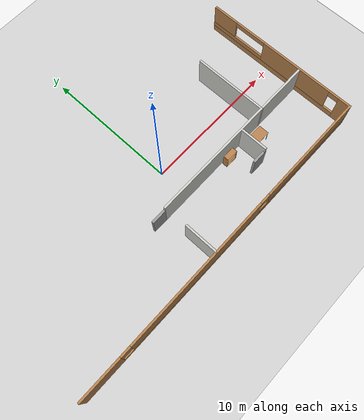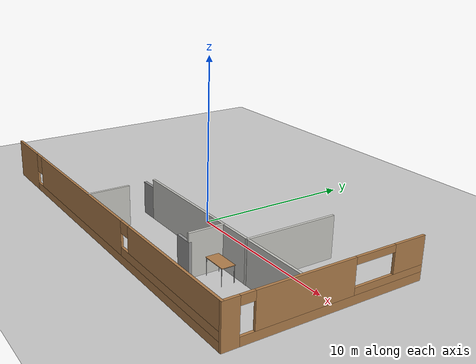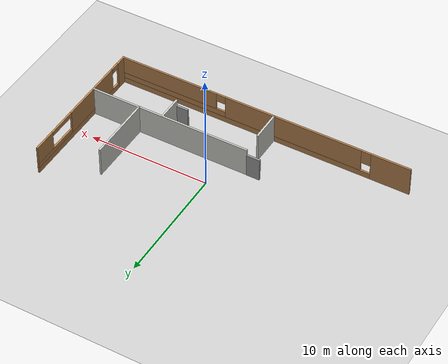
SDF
<sdf version="1.6">
 <world name="default">
  <model name="ground_plane">
   <static>1</static>
   <link name="link">
    <collision name="collision">
     <geometry><plane><normal>0 0 1</normal><size>100 100</size></plane></geometry>
     <surface>
      <contact><collide_bitmask>65535</collide_bitmask></contact>
      <friction><ode><mu>100</mu><mu2>50</mu2></ode></friction>
     </surface>
    </collision>
    <visual name="visual">
     <cast_shadows>0</cast_shadows>
     <geometry><plane><normal>0 0 1</normal><size>100 100</size></plane></geometry>
     <material>
      <script><uri>file://media/materials/scripts/gazebo.material</uri><name>Gazebo/Grey</name></script>
     </material>
    </visual>
   </link>
  </model>
  <model name="table_1">
   <static>1</static>
   <link name="link">
    <collision name="surface">
     <pose>0 0 1 0 -0 0</pose>
     <geometry><box><size>1.5 0.8 0.03</size></box></geometry>
     <surface><friction><ode><mu>0.6</mu><mu2>0.6</mu2></ode></friction></surface>
    </collision>
    <visual name="visual1">
     <pose>0 0 1 0 -0 0</pose>
     <geometry><box><size>1.5 0.8 0.03</size></box></geometry>
     <material>
      <script><uri>file://media/materials/scripts/gazebo.material</uri><name>Gazebo/Wood</name></script>
     </material>
    </visual>
    <collision name="front_left_leg">
     <pose>0.68 0.38 0.5 0 -0 0</pose>
     <geometry><cylinder><radius>0.02</radius><length>1</length></cylinder></geometry>
    </collision>
    <visual name="front_left_leg">
     <pose>0.68 0.38 0.5 0 -0 0</pose>
     <geometry><cylinder><radius>0.02</radius><length>1</length></cylinder></geometry>
     <material>
      <script><uri>file://media/materials/scripts/gazebo.material</uri><name>Gazebo/Grey</name></script>
     </material>
    </visual>
    <collision name="front_right_leg">
     <pose>0.68 -0.38 0.5 0 -0 0</pose>
     <geometry><cylinder><radius>0.02</radius><length>1</length></cylinder></geometry>
    </collision>
    <visual name="front_right_leg">
     <pose>0.68 -0.38 0.5 0 -0 0</pose>
     <geometry><cylinder><radius>0.02</radius><length>1</length></cylinder></geometry>
     <material>
      <script><uri>file://media/materials/scripts/gazebo.material</uri><name>Gazebo/Grey</name></script>
     </material>
    </visual>
    <collision name="back_right_leg">
     <pose>-0.68 -0.38 0.5 0 -0 0</pose>
     <geometry><cylinder><radius>0.02</radius><length>1</length></cylinder></geometry>
    </collision>
    <visual name="back_right_leg">
     <pose>-0.68 -0.38 0.5 0 -0 0</pose>
     <geometry><cylinder><radius>0.02</radius><length>1</length></cylinder></geometry>
     <material>
      <script><uri>file://media/materials/scripts/gazebo.material</uri><name>Gazebo/Grey</name></script>
     </material>
    </visual>
    <collision name="back_left_leg">
     <pose>-0.68 0.38 0.5 0 -0 0</pose>
     <geometry><cylinder><radius>0.02</radius><length>1</length></cylinder></geometry>
    </collision>
    <visual name="back_left_leg">
     <pose>-0.68 0.38 0.5 0 -0 0</pose>
     <geometry><cylinder><radius>0.02</radius><length>1</length></cylinder></geometry>
     <material>
      <script><uri>file://media/materials/scripts/gazebo.material</uri><name>Gazebo/Grey</name></script>
     </material>
    </visual>
   </link>
   <pose>6.12704 -3.2004 0 0 -0 0</pose>
  </model>
  <model name="bookshelf_0">
   <static>1</static>
   <link name="link">
    <inertial><mass>1</mass></inertial>
    <collision name="back">
     <pose>0 0.005 0.6 0 -0 0</pose>
     <geometry><box><size>0.9 0.01 1.2</size></box></geometry>
    </collision>
    <visual name="visual1">
     <pose>0 0.005 0.6 0 -0 0</pose>
     <geometry><box><size>0.9 0.01 1.2</size></box></geometry>
     <material>
      <script><uri>file://media/materials/scripts/gazebo.material</uri><name>Gazebo/Wood</name></script>
     </material>
    </visual>
    <collision name="left_side">
     <pose>0.45 -0.195 0.6 0 -0 0</pose>
     <geometry><box><size>0.02 0.4 1.2</size></box></geometry>
    </collision>
    <visual name="visual2">
     <pose>0.45 -0.195 0.6 0 -0 0</pose>
     <geometry><box><size>0.02 0.4 1.2</size></box></geometry>
     <material>
      <script><uri>file://media/materials/scripts/gazebo.material</uri><name>Gazebo/Wood</name></script>
     </material>
    </visual>
    <collision name="right_side">
     <pose>-0.45 -0.195 0.6 0 -0 0</pose>
     <geometry><box><size>0.02 0.4 1.2</size></box></geometry>
    </collision>
    <visual name="visual3">
     <pose>-0.45 -0.195 0.6 0 -0 0</pose>
     <geometry><box><size>0.02 0.4 1.2</size></box></geometry>
     <material>
      <script><uri>file://media/materials/scripts/gazebo.material</uri><name>Gazebo/Wood</name></script>
     </material>
    </visual>
    <collision name="bottom">
     <pose>0 -0.195 0.03 0 -0 0</pose>
     <geometry><box><size>0.88 0.4 0.06</size></box></geometry>
    </collision>
    <visual name="visual4">
     <pose>0 -0.195 0.03 0 -0 0</pose>
     <geometry><box><size>0.88 0.4 0.06</size></box></geometry>
     <material>
      <script><uri>file://media/materials/scripts/gazebo.material</uri><name>Gazebo/Wood</name></script>
     </material>
    </visual>
    <collision name="top">
     <pose>0 -0.195 1.19 0 -0 0</pose>
     <geometry><box><size>0.88 0.4 0.02</size></box></geometry>
    </collision>
    <visual name="visual5">
     <pose>0 -0.195 1.19 0 -0 0</pose>
     <geometry><box><size>0.88 0.4 0.02</size></box></geometry>
     <material>
      <script><uri>file://media/materials/scripts/gazebo.material</uri><name>Gazebo/Wood</name></script>
     </material>
    </visual>
    <collision name="low_shelf">
     <pose>0 -0.195 0.43 0 -0 0</pose>
     <geometry><box><size>0.88 0.4 0.02</size></box></geometry>
    </collision>
    <visual name="visual6">
     <pose>0 -0.195 0.43 0 -0 0</pose>
     <geometry><box><size>0.88 0.4 0.02</size></box></geometry>
     <material>
      <script><uri>file://media/materials/scripts/gazebo.material</uri><name>Gazebo/Wood</name></script>
     </material>
    </visual>
    <collision name="high_shelf">
     <pose>0 -0.195 0.8 0 -0 0</pose>
     <geometry><box><size>0.88 0.4 0.02</size></box></geometry>
    </collision>
    <visual name="visual7">
     <pose>0 -0.195 0.8 0 -0 0</pose>
     <geometry><box><size>0.88 0.4 0.02</size></box></geometry>
     <material>
      <script><uri>file://media/materials/scripts/gazebo.material</uri><name>Gazebo/Wood</name></script>
     </material>
    </visual>
   </link>
   <pose>3.85647 -2.55218 0 0 -0 0</pose>
  </model>
  <model name="MyHouse">
   <link name="Door_6">
    <pose>-1.63334 -3.5898 0 0 -0 0</pose>
    <inertial>
     <inertia><ixx>0</ixx><ixy>0</ixy><ixz>0</ixz><iyy>0</iyy><iyz>0</iyz><izz>0</izz></inertia>
     <mass>0</mass>
    </inertial>
    <visual name="Door_6_Visual">
     <pose>0 0 1 0 -0 0</pose>
     <geometry><box><size>1.13121 0.17 2</size></box></geometry>
     <material>
      <script><uri>file://media/materials/scripts/gazebo.material</uri><name>Gazebo/Grey</name></script>
      <shader type="pixel"/>
     </material>
    </visual>
    <collision name="Door_6_Collision">
     <pose>0 0 1 0 -0 0</pose>
     <geometry><box><size>1.13121 0.17 2</size></box></geometry>
     <surface>
      <friction>
       <ode><mu>1</mu><mu2>1</mu2><fdir1>0 0 0</fdir1><slip1>0</slip1><slip2>0</slip2></ode>
       <torsional>
        <coefficient>1</coefficient>
        <patch_radius>0</patch_radius>
        <surface_radius>0</surface_radius>
        <use_patch_radius>1</use_patch_radius>
        <ode><slip>0</slip></ode>
       </torsional>
      </friction>
      <bounce><restitution_coefficient>0</restitution_coefficient><threshold>1e+06</threshold></bounce>
      <contact>
       <collide_without_contact>0</collide_without_contact>
       <collide_without_contact_bitmask>1</collide_without_contact_bitmask>
       <collide_bitmask>1</collide_bitmask>
       <ode>
        <soft_cfm>0</soft_cfm>
        <soft_erp>0.2</soft_erp>
        <kp>1e+13</kp>
        <kd>1</kd>
        <max_vel>0.01</max_vel>
        <min_depth>0</min_depth>
       </ode>
       <bullet>
        <split_impulse>1</split_impulse>
        <split_impulse_penetration_threshold>-0.01</split_impulse_penetration_threshold>
        <soft_cfm>0</soft_cfm>
        <soft_erp>0.2</soft_erp>
        <kp>1e+13</kp>
        <kd>1</kd>
       </bullet>
      </contact>
     </surface>
    </collision>
   </link>
   <link name="Door_7">
    <pose>5.7869 -5.63438 0 0 -0 0</pose>
    <inertial>
     <inertia><ixx>0</ixx><ixy>0</ixy><ixz>0</ixz><iyy>0</iyy><iyz>0</iyz><izz>0</izz></inertia>
     <mass>0</mass>
    </inertial>
    <visual name="Door_7_Visual">
     <pose>0 0 1 0 -0 0</pose>
     <geometry><box><size>1.12373 0.17 2</size></box></geometry>
     <material>
      <script><uri>file://media/materials/scripts/gazebo.material</uri><name>Gazebo/Grey</name></script>
      <shader type="pixel"/>
     </material>
    </visual>
    <collision name="Door_7_Collision">
     <pose>0 0 1 0 -0 0</pose>
     <geometry><box><size>1.12373 0.17 2</size></box></geometry>
     <surface>
      <friction>
       <ode><mu>1</mu><mu2>1</mu2><fdir1>0 0 0</fdir1><slip1>0</slip1><slip2>0</slip2></ode>
       <torsional>
        <coefficient>1</coefficient>
        <patch_radius>0</patch_radius>
        <surface_radius>0</surface_radius>
        <use_patch_radius>1</use_patch_radius>
        <ode><slip>0</slip></ode>
       </torsional>
      </friction>
      <bounce><restitution_coefficient>0</restitution_coefficient><threshold>1e+06</threshold></bounce>
      <contact>
       <collide_without_contact>0</collide_without_contact>
       <collide_without_contact_bitmask>1</collide_without_contact_bitmask>
       <collide_bitmask>1</collide_bitmask>
       <ode>
        <soft_cfm>0</soft_cfm>
        <soft_erp>0.2</soft_erp>
        <kp>1e+13</kp>
        <kd>1</kd>
        <max_vel>0.01</max_vel>
        <min_depth>0</min_depth>
       </ode>
       <bullet>
        <split_impulse>1</split_impulse>
        <split_impulse_penetration_threshold>-0.01</split_impulse_penetration_threshold>
        <soft_cfm>0</soft_cfm>
        <soft_erp>0.2</soft_erp>
        <kp>1e+13</kp>
        <kd>1</kd>
       </bullet>
      </contact>
     </surface>
    </collision>
   </link>
   <link name="Wall_3">
    <pose>0 -7.85 0 0 -0 0</pose>
    <visual name="Wall_3_Visual_2">
     <pose>-2.59948 0 1.5 0 -0 0</pose>
     <geometry><box><size>11.6223 0.15 2</size></box></geometry>
     <material>
      <script><uri>file://media/materials/scripts/gazebo.material</uri><name>Gazebo/Wood</name></script>
      <ambient>1 1 1 1</ambient>
      <shader type="pixel"/>
     </material>
     <meta><layer>0</layer></meta>
    </visual>
    <visual name="Wall_3_Visual_5">
     <pose>-8.81063 0 1.9 0 -0 0</pose>
     <geometry><box><size>0.8 0.15 1.2</size></box></geometry>
     <material>
      <script><uri>file://media/materials/scripts/gazebo.material</uri><name>Gazebo/Wood</name></script>
      <ambient>1 1 1 1</ambient>
      <shader type="pixel"/>
     </material>
     <meta><layer>0</layer></meta>
    </visual>
    <visual name="Wall_3_Visual_3">
     <pose>7.85583 0 0.75 0 -0 0</pose>
     <geometry><box><size>9.28834 0.15 0.5</size></box></geometry>
     <material>
      <script><uri>file://media/materials/scripts/gazebo.material</uri><name>Gazebo/Wood</name></script>
      <ambient>1 1 1 1</ambient>
      <shader type="pixel"/>
     </material>
     <meta><layer>0</layer></meta>
    </visual>
    <visual name="Wall_3_Visual_1">
     <pose>1.64468 0 0.25 0 -0 0</pose>
     <geometry><box><size>21.7106 0.15 0.5</size></box></geometry>
     <material>
      <script><uri>file://media/materials/scripts/gazebo.material</uri><name>Gazebo/Wood</name></script>
      <ambient>1 1 1 1</ambient>
      <shader type="pixel"/>
     </material>
     <meta><layer>0</layer></meta>
    </visual>
    <visual name="Wall_3_Visual_0">
     <pose>-10.8553 0 1.25 0 -0 0</pose>
     <geometry><box><size>3.28937 0.15 2.5</size></box></geometry>
     <material>
      <script><uri>file://media/materials/scripts/gazebo.material</uri><name>Gazebo/Wood</name></script>
      <ambient>1 1 1 1</ambient>
      <shader type="pixel"/>
     </material>
     <meta><layer>0</layer></meta>
    </visual>
    <visual name="Wall_3_Visual_6">
     <pose>3.61166 0 2.15 0 -0 0</pose>
     <geometry><box><size>0.8 0.15 0.7</size></box></geometry>
     <material>
      <script><uri>file://media/materials/scripts/gazebo.material</uri><name>Gazebo/Wood</name></script>
      <ambient>1 1 1 1</ambient>
      <shader type="pixel"/>
     </material>
     <meta><layer>0</layer></meta>
    </visual>
    <visual name="Wall_3_Visual_4">
     <pose>8.25583 0 1.75 0 -0 0</pose>
     <geometry><box><size>8.48834 0.15 1.5</size></box></geometry>
     <material>
      <script><uri>file://media/materials/scripts/gazebo.material</uri><name>Gazebo/Wood</name></script>
      <ambient>1 1 1 1</ambient>
      <shader type="pixel"/>
     </material>
     <meta><layer>0</layer></meta>
    </visual>
    <collision name="Wall_3_Collision_0">
     <pose>-10.8553 0 1.25 0 -0 0</pose>
     <geometry><box><size>3.28937 0.15 2.5</size></box></geometry>
     <surface>
      <friction>
       <ode><mu>1</mu><mu2>1</mu2><fdir1>0 0 0</fdir1><slip1>0</slip1><slip2>0</slip2></ode>
       <torsional>
        <coefficient>1</coefficient>
        <patch_radius>0</patch_radius>
        <surface_radius>0</surface_radius>
        <use_patch_radius>1</use_patch_radius>
        <ode><slip>0</slip></ode>
       </torsional>
      </friction>
      <bounce><restitution_coefficient>0</restitution_coefficient><threshold>1e+06</threshold></bounce>
      <contact>
       <collide_without_contact>0</collide_without_contact>
       <collide_without_contact_bitmask>1</collide_without_contact_bitmask>
       <collide_bitmask>1</collide_bitmask>
       <ode>
        <soft_cfm>0</soft_cfm>
        <soft_erp>0.2</soft_erp>
        <kp>1e+13</kp>
        <kd>1</kd>
        <max_vel>0.01</max_vel>
        <min_depth>0</min_depth>
       </ode>
       <bullet>
        <split_impulse>1</split_impulse>
        <split_impulse_penetration_threshold>-0.01</split_impulse_penetration_threshold>
        <soft_cfm>0</soft_cfm>
        <soft_erp>0.2</soft_erp>
        <kp>1e+13</kp>
        <kd>1</kd>
       </bullet>
      </contact>
     </surface>
    </collision>
    <collision name="Wall_3_Collision_3">
     <pose>7.85583 0 0.75 0 -0 0</pose>
     <geometry><box><size>9.28834 0.15 0.5</size></box></geometry>
     <surface>
      <friction>
       <ode><mu>1</mu><mu2>1</mu2><fdir1>0 0 0</fdir1><slip1>0</slip1><slip2>0</slip2></ode>
       <torsional>
        <coefficient>1</coefficient>
        <patch_radius>0</patch_radius>
        <surface_radius>0</surface_radius>
        <use_patch_radius>1</use_patch_radius>
        <ode><slip>0</slip></ode>
       </torsional>
      </friction>
      <bounce><restitution_coefficient>0</restitution_coefficient><threshold>1e+06</threshold></bounce>
      <contact>
       <collide_without_contact>0</collide_without_contact>
       <collide_without_contact_bitmask>1</collide_without_contact_bitmask>
       <collide_bitmask>1</collide_bitmask>
       <ode>
        <soft_cfm>0</soft_cfm>
        <soft_erp>0.2</soft_erp>
        <kp>1e+13</kp>
        <kd>1</kd>
        <max_vel>0.01</max_vel>
        <min_depth>0</min_depth>
       </ode>
       <bullet>
        <split_impulse>1</split_impulse>
        <split_impulse_penetration_threshold>-0.01</split_impulse_penetration_threshold>
        <soft_cfm>0</soft_cfm>
        <soft_erp>0.2</soft_erp>
        <kp>1e+13</kp>
        <kd>1</kd>
       </bullet>
      </contact>
     </surface>
    </collision>
    <collision name="Wall_3_Collision_1">
     <pose>1.64468 0 0.25 0 -0 0</pose>
     <geometry><box><size>21.7106 0.15 0.5</size></box></geometry>
     <surface>
      <friction>
       <ode><mu>1</mu><mu2>1</mu2><fdir1>0 0 0</fdir1><slip1>0</slip1><slip2>0</slip2></ode>
       <torsional>
        <coefficient>1</coefficient>
        <patch_radius>0</patch_radius>
        <surface_radius>0</surface_radius>
        <use_patch_radius>1</use_patch_radius>
        <ode><slip>0</slip></ode>
       </torsional>
      </friction>
      <bounce><restitution_coefficient>0</restitution_coefficient><threshold>1e+06</threshold></bounce>
      <contact>
       <collide_without_contact>0</collide_without_contact>
       <collide_without_contact_bitmask>1</collide_without_contact_bitmask>
       <collide_bitmask>1</collide_bitmask>
       <ode>
        <soft_cfm>0</soft_cfm>
        <soft_erp>0.2</soft_erp>
        <kp>1e+13</kp>
        <kd>1</kd>
        <max_vel>0.01</max_vel>
        <min_depth>0</min_depth>
       </ode>
       <bullet>
        <split_impulse>1</split_impulse>
        <split_impulse_penetration_threshold>-0.01</split_impulse_penetration_threshold>
        <soft_cfm>0</soft_cfm>
        <soft_erp>0.2</soft_erp>
        <kp>1e+13</kp>
        <kd>1</kd>
       </bullet>
      </contact>
     </surface>
    </collision>
    <collision name="Wall_3_Collision_4">
     <pose>8.25583 0 1.75 0 -0 0</pose>
     <geometry><box><size>8.48834 0.15 1.5</size></box></geometry>
     <surface>
      <friction>
       <ode><mu>1</mu><mu2>1</mu2><fdir1>0 0 0</fdir1><slip1>0</slip1><slip2>0</slip2></ode>
       <torsional>
        <coefficient>1</coefficient>
        <patch_radius>0</patch_radius>
        <surface_radius>0</surface_radius>
        <use_patch_radius>1</use_patch_radius>
        <ode><slip>0</slip></ode>
       </torsional>
      </friction>
      <bounce><restitution_coefficient>0</restitution_coefficient><threshold>1e+06</threshold></bounce>
      <contact>
       <collide_without_contact>0</collide_without_contact>
       <collide_without_contact_bitmask>1</collide_without_contact_bitmask>
       <collide_bitmask>1</collide_bitmask>
       <ode>
        <soft_cfm>0</soft_cfm>
        <soft_erp>0.2</soft_erp>
        <kp>1e+13</kp>
        <kd>1</kd>
        <max_vel>0.01</max_vel>
        <min_depth>0</min_depth>
       </ode>
       <bullet>
        <split_impulse>1</split_impulse>
        <split_impulse_penetration_threshold>-0.01</split_impulse_penetration_threshold>
        <soft_cfm>0</soft_cfm>
        <soft_erp>0.2</soft_erp>
        <kp>1e+13</kp>
        <kd>1</kd>
       </bullet>
      </contact>
     </surface>
    </collision>
    <collision name="Wall_3_Collision_2">
     <pose>-2.59948 0 1.5 0 -0 0</pose>
     <geometry><box><size>11.6223 0.15 2</size></box></geometry>
     <surface>
      <friction>
       <ode><mu>1</mu><mu2>1</mu2><fdir1>0 0 0</fdir1><slip1>0</slip1><slip2>0</slip2></ode>
       <torsional>
        <coefficient>1</coefficient>
        <patch_radius>0</patch_radius>
        <surface_radius>0</surface_radius>
        <use_patch_radius>1</use_patch_radius>
        <ode><slip>0</slip></ode>
       </torsional>
      </friction>
      <bounce><restitution_coefficient>0</restitution_coefficient><threshold>1e+06</threshold></bounce>
      <contact>
       <collide_without_contact>0</collide_without_contact>
       <collide_without_contact_bitmask>1</collide_without_contact_bitmask>
       <collide_bitmask>1</collide_bitmask>
       <ode>
        <soft_cfm>0</soft_cfm>
        <soft_erp>0.2</soft_erp>
        <kp>1e+13</kp>
        <kd>1</kd>
        <max_vel>0.01</max_vel>
        <min_depth>0</min_depth>
       </ode>
       <bullet>
        <split_impulse>1</split_impulse>
        <split_impulse_penetration_threshold>-0.01</split_impulse_penetration_threshold>
        <soft_cfm>0</soft_cfm>
        <soft_erp>0.2</soft_erp>
        <kp>1e+13</kp>
        <kd>1</kd>
       </bullet>
      </contact>
     </surface>
    </collision>
    <collision name="Wall_3_Collision_5">
     <pose>-8.81063 0 1.9 0 -0 0</pose>
     <geometry><box><size>0.8 0.15 1.2</size></box></geometry>
     <surface>
      <friction>
       <ode><mu>1</mu><mu2>1</mu2><fdir1>0 0 0</fdir1><slip1>0</slip1><slip2>0</slip2></ode>
       <torsional>
        <coefficient>1</coefficient>
        <patch_radius>0</patch_radius>
        <surface_radius>0</surface_radius>
        <use_patch_radius>1</use_patch_radius>
        <ode><slip>0</slip></ode>
       </torsional>
      </friction>
      <bounce><restitution_coefficient>0</restitution_coefficient><threshold>1e+06</threshold></bounce>
      <contact>
       <collide_without_contact>0</collide_without_contact>
       <collide_without_contact_bitmask>1</collide_without_contact_bitmask>
       <collide_bitmask>1</collide_bitmask>
       <ode>
        <soft_cfm>0</soft_cfm>
        <soft_erp>0.2</soft_erp>
        <kp>1e+13</kp>
        <kd>1</kd>
        <max_vel>0.01</max_vel>
        <min_depth>0</min_depth>
       </ode>
       <bullet>
        <split_impulse>1</split_impulse>
        <split_impulse_penetration_threshold>-0.01</split_impulse_penetration_threshold>
        <soft_cfm>0</soft_cfm>
        <soft_erp>0.2</soft_erp>
        <kp>1e+13</kp>
        <kd>1</kd>
       </bullet>
      </contact>
     </surface>
    </collision>
    <collision name="Wall_3_Collision_6">
     <pose>3.61166 0 2.15 0 -0 0</pose>
     <geometry><box><size>0.8 0.15 0.7</size></box></geometry>
     <surface>
      <friction>
       <ode><mu>1</mu><mu2>1</mu2><fdir1>0 0 0</fdir1><slip1>0</slip1><slip2>0</slip2></ode>
       <torsional>
        <coefficient>1</coefficient>
        <patch_radius>0</patch_radius>
        <surface_radius>0</surface_radius>
        <use_patch_radius>1</use_patch_radius>
        <ode><slip>0</slip></ode>
       </torsional>
      </friction>
      <bounce><restitution_coefficient>0</restitution_coefficient><threshold>1e+06</threshold></bounce>
      <contact>
       <collide_without_contact>0</collide_without_contact>
       <collide_without_contact_bitmask>1</collide_without_contact_bitmask>
       <collide_bitmask>1</collide_bitmask>
       <ode>
        <soft_cfm>0</soft_cfm>
        <soft_erp>0.2</soft_erp>
        <kp>1e+13</kp>
        <kd>1</kd>
        <max_vel>0.01</max_vel>
        <min_depth>0</min_depth>
       </ode>
       <bullet>
        <split_impulse>1</split_impulse>
        <split_impulse_penetration_threshold>-0.01</split_impulse_penetration_threshold>
        <soft_cfm>0</soft_cfm>
        <soft_erp>0.2</soft_erp>
        <kp>1e+13</kp>
        <kd>1</kd>
       </bullet>
      </contact>
     </surface>
    </collision>
   </link>
   <link name="Wall_4">
    <pose>12.425 -1.925 0 0 -0 1.5708</pose>
    <visual name="Wall_4_Visual_4">
     <pose>4.99246 0 1.7 0 -0 0</pose>
     <geometry><box><size>2.01507 0.15 1.6</size></box></geometry>
     <material>
      <script><uri>file://media/materials/scripts/gazebo.material</uri><name>Gazebo/Wood</name></script>
      <ambient>1 1 1 1</ambient>
      <shader type="pixel"/>
     </material>
     <meta><layer>0</layer></meta>
    </visual>
    <visual name="Wall_4_Visual_0">
     <pose>-5.51654 0 1.25 0 -0 0</pose>
     <geometry><box><size>0.966928 0.15 2.5</size></box></geometry>
     <material>
      <script><uri>file://media/materials/scripts/gazebo.material</uri><name>Gazebo/Wood</name></script>
      <ambient>1 1 1 1</ambient>
      <shader type="pixel"/>
     </material>
     <meta><layer>0</layer></meta>
    </visual>
    <visual name="Wall_4_Visual_1">
     <pose>0.483464 0 0.25 0 -0 0</pose>
     <geometry><box><size>11.0331 0.15 0.5</size></box></geometry>
     <material>
      <script><uri>file://media/materials/scripts/gazebo.material</uri><name>Gazebo/Wood</name></script>
      <ambient>1 1 1 1</ambient>
      <shader type="pixel"/>
     </material>
     <meta><layer>0</layer></meta>
    </visual>
    <visual name="Wall_4_Visual_2">
     <pose>-1.37407 0 1.5 0 -0 0</pose>
     <geometry><box><size>5.718 0.15 2</size></box></geometry>
     <material>
      <script><uri>file://media/materials/scripts/gazebo.material</uri><name>Gazebo/Wood</name></script>
      <ambient>1 1 1 1</ambient>
      <shader type="pixel"/>
     </material>
     <meta><layer>0</layer></meta>
    </visual>
    <visual name="Wall_4_Visual_6">
     <pose>2.73493 0 2.3 0 -0 0</pose>
     <geometry><box><size>2.5 0.15 0.4</size></box></geometry>
     <material>
      <script><uri>file://media/materials/scripts/gazebo.material</uri><name>Gazebo/Wood</name></script>
      <ambient>1 1 1 1</ambient>
      <shader type="pixel"/>
     </material>
     <meta><layer>0</layer></meta>
    </visual>
    <visual name="Wall_4_Visual_5">
     <pose>-4.63307 0 2.25 0 -0 0</pose>
     <geometry><box><size>0.8 0.15 0.5</size></box></geometry>
     <material>
      <script><uri>file://media/materials/scripts/gazebo.material</uri><name>Gazebo/Wood</name></script>
      <ambient>1 1 1 1</ambient>
      <shader type="pixel"/>
     </material>
     <meta><layer>0</layer></meta>
    </visual>
    <visual name="Wall_4_Visual_3">
     <pose>3.74246 0 0.7 0 -0 0</pose>
     <geometry><box><size>4.51507 0.15 0.4</size></box></geometry>
     <material>
      <script><uri>file://media/materials/scripts/gazebo.material</uri><name>Gazebo/Wood</name></script>
      <ambient>1 1 1 1</ambient>
      <shader type="pixel"/>
     </material>
     <meta><layer>0</layer></meta>
    </visual>
    <collision name="Wall_4_Collision_6">
     <pose>2.73493 0 2.3 0 -0 0</pose>
     <geometry><box><size>2.5 0.15 0.4</size></box></geometry>
     <surface>
      <friction>
       <ode><mu>1</mu><mu2>1</mu2><fdir1>0 0 0</fdir1><slip1>0</slip1><slip2>0</slip2></ode>
       <torsional>
        <coefficient>1</coefficient>
        <patch_radius>0</patch_radius>
        <surface_radius>0</surface_radius>
        <use_patch_radius>1</use_patch_radius>
        <ode><slip>0</slip></ode>
       </torsional>
      </friction>
      <bounce><restitution_coefficient>0</restitution_coefficient><threshold>1e+06</threshold></bounce>
      <contact>
       <collide_without_contact>0</collide_without_contact>
       <collide_without_contact_bitmask>1</collide_without_contact_bitmask>
       <collide_bitmask>1</collide_bitmask>
       <ode>
        <soft_cfm>0</soft_cfm>
        <soft_erp>0.2</soft_erp>
        <kp>1e+13</kp>
        <kd>1</kd>
        <max_vel>0.01</max_vel>
        <min_depth>0</min_depth>
       </ode>
       <bullet>
        <split_impulse>1</split_impulse>
        <split_impulse_penetration_threshold>-0.01</split_impulse_penetration_threshold>
        <soft_cfm>0</soft_cfm>
        <soft_erp>0.2</soft_erp>
        <kp>1e+13</kp>
        <kd>1</kd>
       </bullet>
      </contact>
     </surface>
    </collision>
    <collision name="Wall_4_Collision_5">
     <pose>-4.63307 0 2.25 0 -0 0</pose>
     <geometry><box><size>0.8 0.15 0.5</size></box></geometry>
     <surface>
      <friction>
       <ode><mu>1</mu><mu2>1</mu2><fdir1>0 0 0</fdir1><slip1>0</slip1><slip2>0</slip2></ode>
       <torsional>
        <coefficient>1</coefficient>
        <patch_radius>0</patch_radius>
        <surface_radius>0</surface_radius>
        <use_patch_radius>1</use_patch_radius>
        <ode><slip>0</slip></ode>
       </torsional>
      </friction>
      <bounce><restitution_coefficient>0</restitution_coefficient><threshold>1e+06</threshold></bounce>
      <contact>
       <collide_without_contact>0</collide_without_contact>
       <collide_without_contact_bitmask>1</collide_without_contact_bitmask>
       <collide_bitmask>1</collide_bitmask>
       <ode>
        <soft_cfm>0</soft_cfm>
        <soft_erp>0.2</soft_erp>
        <kp>1e+13</kp>
        <kd>1</kd>
        <max_vel>0.01</max_vel>
        <min_depth>0</min_depth>
       </ode>
       <bullet>
        <split_impulse>1</split_impulse>
        <split_impulse_penetration_threshold>-0.01</split_impulse_penetration_threshold>
        <soft_cfm>0</soft_cfm>
        <soft_erp>0.2</soft_erp>
        <kp>1e+13</kp>
        <kd>1</kd>
       </bullet>
      </contact>
     </surface>
    </collision>
    <collision name="Wall_4_Collision_2">
     <pose>-1.37407 0 1.5 0 -0 0</pose>
     <geometry><box><size>5.718 0.15 2</size></box></geometry>
     <surface>
      <friction>
       <ode><mu>1</mu><mu2>1</mu2><fdir1>0 0 0</fdir1><slip1>0</slip1><slip2>0</slip2></ode>
       <torsional>
        <coefficient>1</coefficient>
        <patch_radius>0</patch_radius>
        <surface_radius>0</surface_radius>
        <use_patch_radius>1</use_patch_radius>
        <ode><slip>0</slip></ode>
       </torsional>
      </friction>
      <bounce><restitution_coefficient>0</restitution_coefficient><threshold>1e+06</threshold></bounce>
      <contact>
       <collide_without_contact>0</collide_without_contact>
       <collide_without_contact_bitmask>1</collide_without_contact_bitmask>
       <collide_bitmask>1</collide_bitmask>
       <ode>
        <soft_cfm>0</soft_cfm>
        <soft_erp>0.2</soft_erp>
        <kp>1e+13</kp>
        <kd>1</kd>
        <max_vel>0.01</max_vel>
        <min_depth>0</min_depth>
       </ode>
       <bullet>
        <split_impulse>1</split_impulse>
        <split_impulse_penetration_threshold>-0.01</split_impulse_penetration_threshold>
        <soft_cfm>0</soft_cfm>
        <soft_erp>0.2</soft_erp>
        <kp>1e+13</kp>
        <kd>1</kd>
       </bullet>
      </contact>
     </surface>
    </collision>
    <collision name="Wall_4_Collision_0">
     <pose>-5.51654 0 1.25 0 -0 0</pose>
     <geometry><box><size>0.966928 0.15 2.5</size></box></geometry>
     <surface>
      <friction>
       <ode><mu>1</mu><mu2>1</mu2><fdir1>0 0 0</fdir1><slip1>0</slip1><slip2>0</slip2></ode>
       <torsional>
        <coefficient>1</coefficient>
        <patch_radius>0</patch_radius>
        <surface_radius>0</surface_radius>
        <use_patch_radius>1</use_patch_radius>
        <ode><slip>0</slip></ode>
       </torsional>
      </friction>
      <bounce><restitution_coefficient>0</restitution_coefficient><threshold>1e+06</threshold></bounce>
      <contact>
       <collide_without_contact>0</collide_without_contact>
       <collide_without_contact_bitmask>1</collide_without_contact_bitmask>
       <collide_bitmask>1</collide_bitmask>
       <ode>
        <soft_cfm>0</soft_cfm>
        <soft_erp>0.2</soft_erp>
        <kp>1e+13</kp>
        <kd>1</kd>
        <max_vel>0.01</max_vel>
        <min_depth>0</min_depth>
       </ode>
       <bullet>
        <split_impulse>1</split_impulse>
        <split_impulse_penetration_threshold>-0.01</split_impulse_penetration_threshold>
        <soft_cfm>0</soft_cfm>
        <soft_erp>0.2</soft_erp>
        <kp>1e+13</kp>
        <kd>1</kd>
       </bullet>
      </contact>
     </surface>
    </collision>
    <collision name="Wall_4_Collision_3">
     <pose>3.74246 0 0.7 0 -0 0</pose>
     <geometry><box><size>4.51507 0.15 0.4</size></box></geometry>
     <surface>
      <friction>
       <ode><mu>1</mu><mu2>1</mu2><fdir1>0 0 0</fdir1><slip1>0</slip1><slip2>0</slip2></ode>
       <torsional>
        <coefficient>1</coefficient>
        <patch_radius>0</patch_radius>
        <surface_radius>0</surface_radius>
        <use_patch_radius>1</use_patch_radius>
        <ode><slip>0</slip></ode>
       </torsional>
      </friction>
      <bounce><restitution_coefficient>0</restitution_coefficient><threshold>1e+06</threshold></bounce>
      <contact>
       <collide_without_contact>0</collide_without_contact>
       <collide_without_contact_bitmask>1</collide_without_contact_bitmask>
       <collide_bitmask>1</collide_bitmask>
       <ode>
        <soft_cfm>0</soft_cfm>
        <soft_erp>0.2</soft_erp>
        <kp>1e+13</kp>
        <kd>1</kd>
        <max_vel>0.01</max_vel>
        <min_depth>0</min_depth>
       </ode>
       <bullet>
        <split_impulse>1</split_impulse>
        <split_impulse_penetration_threshold>-0.01</split_impulse_penetration_threshold>
        <soft_cfm>0</soft_cfm>
        <soft_erp>0.2</soft_erp>
        <kp>1e+13</kp>
        <kd>1</kd>
       </bullet>
      </contact>
     </surface>
    </collision>
    <collision name="Wall_4_Collision_4">
     <pose>4.99246 0 1.7 0 -0 0</pose>
     <geometry><box><size>2.01507 0.15 1.6</size></box></geometry>
     <surface>
      <friction>
       <ode><mu>1</mu><mu2>1</mu2><fdir1>0 0 0</fdir1><slip1>0</slip1><slip2>0</slip2></ode>
       <torsional>
        <coefficient>1</coefficient>
        <patch_radius>0</patch_radius>
        <surface_radius>0</surface_radius>
        <use_patch_radius>1</use_patch_radius>
        <ode><slip>0</slip></ode>
       </torsional>
      </friction>
      <bounce><restitution_coefficient>0</restitution_coefficient><threshold>1e+06</threshold></bounce>
      <contact>
       <collide_without_contact>0</collide_without_contact>
       <collide_without_contact_bitmask>1</collide_without_contact_bitmask>
       <collide_bitmask>1</collide_bitmask>
       <ode>
        <soft_cfm>0</soft_cfm>
        <soft_erp>0.2</soft_erp>
        <kp>1e+13</kp>
        <kd>1</kd>
        <max_vel>0.01</max_vel>
        <min_depth>0</min_depth>
       </ode>
       <bullet>
        <split_impulse>1</split_impulse>
        <split_impulse_penetration_threshold>-0.01</split_impulse_penetration_threshold>
        <soft_cfm>0</soft_cfm>
        <soft_erp>0.2</soft_erp>
        <kp>1e+13</kp>
        <kd>1</kd>
       </bullet>
      </contact>
     </surface>
    </collision>
    <collision name="Wall_4_Collision_1">
     <pose>0.483464 0 0.25 0 -0 0</pose>
     <geometry><box><size>11.0331 0.15 0.5</size></box></geometry>
     <surface>
      <friction>
       <ode><mu>1</mu><mu2>1</mu2><fdir1>0 0 0</fdir1><slip1>0</slip1><slip2>0</slip2></ode>
       <torsional>
        <coefficient>1</coefficient>
        <patch_radius>0</patch_radius>
        <surface_radius>0</surface_radius>
        <use_patch_radius>1</use_patch_radius>
        <ode><slip>0</slip></ode>
       </torsional>
      </friction>
      <bounce><restitution_coefficient>0</restitution_coefficient><threshold>1e+06</threshold></bounce>
      <contact>
       <collide_without_contact>0</collide_without_contact>
       <collide_without_contact_bitmask>1</collide_without_contact_bitmask>
       <collide_bitmask>1</collide_bitmask>
       <ode>
        <soft_cfm>0</soft_cfm>
        <soft_erp>0.2</soft_erp>
        <kp>1e+13</kp>
        <kd>1</kd>
        <max_vel>0.01</max_vel>
        <min_depth>0</min_depth>
       </ode>
       <bullet>
        <split_impulse>1</split_impulse>
        <split_impulse_penetration_threshold>-0.01</split_impulse_penetration_threshold>
        <soft_cfm>0</soft_cfm>
        <soft_erp>0.2</soft_erp>
        <kp>1e+13</kp>
        <kd>1</kd>
       </bullet>
      </contact>
     </surface>
    </collision>
   </link>
   <link name="Wall_46">
    <pose>10.375 -3.6 0 0 -0 0</pose>
    <visual name="Wall_46_Visual">
     <pose>0 0 1.25 0 -0 0</pose>
     <geometry><box><size>4.25 0.15 2.5</size></box></geometry>
     <material>
      <script><uri>file://media/materials/scripts/gazebo.material</uri><name>Gazebo/CeilingTiled</name></script>
      <ambient>0.760784 0.662745 0.627451 1</ambient>
      <shader type="pixel"/>
     </material>
     <meta><layer>0</layer></meta>
    </visual>
    <collision name="Wall_46_Collision">
     <pose>0 0 1.25 0 -0 0</pose>
     <geometry><box><size>4.25 0.15 2.5</size></box></geometry>
     <surface>
      <friction>
       <ode><mu>1</mu><mu2>1</mu2><fdir1>0 0 0</fdir1><slip1>0</slip1><slip2>0</slip2></ode>
       <torsional>
        <coefficient>1</coefficient>
        <patch_radius>0</patch_radius>
        <surface_radius>0</surface_radius>
        <use_patch_radius>1</use_patch_radius>
        <ode><slip>0</slip></ode>
       </torsional>
      </friction>
      <bounce><restitution_coefficient>0</restitution_coefficient><threshold>1e+06</threshold></bounce>
      <contact>
       <collide_without_contact>0</collide_without_contact>
       <collide_without_contact_bitmask>1</collide_without_contact_bitmask>
       <collide_bitmask>1</collide_bitmask>
       <ode>
        <soft_cfm>0</soft_cfm>
        <soft_erp>0.2</soft_erp>
        <kp>1e+13</kp>
        <kd>1</kd>
        <max_vel>0.01</max_vel>
        <min_depth>0</min_depth>
       </ode>
       <bullet>
        <split_impulse>1</split_impulse>
        <split_impulse_penetration_threshold>-0.01</split_impulse_penetration_threshold>
        <soft_cfm>0</soft_cfm>
        <soft_erp>0.2</soft_erp>
        <kp>1e+13</kp>
        <kd>1</kd>
       </bullet>
      </contact>
     </surface>
    </collision>
   </link>
   <link name="Wall_49">
    <pose>8.325 -0.888947 0 0 -0 1.5708</pose>
    <inertial>
     <inertia><ixx>0</ixx><ixy>0</ixy><ixz>0</ixz><iyy>0</iyy><iyz>0</iyz><izz>0</izz></inertia>
     <mass>0</mass>
    </inertial>
    <visual name="Wall_49_Visual">
     <pose>0 0 1.25 0 -0 0</pose>
     <geometry><box><size>5.59987 0.15 2.5</size></box></geometry>
     <material>
      <script><uri>file://media/materials/scripts/gazebo.material</uri><name>Gazebo/CeilingTiled</name></script>
      <ambient>0.760784 0.662745 0.627451 1</ambient>
      <shader type="pixel"/>
     </material>
     <meta><layer>0</layer></meta>
    </visual>
    <collision name="Wall_49_Collision">
     <pose>0 0 1.25 0 -0 0</pose>
     <geometry><box><size>5.59987 0.15 2.5</size></box></geometry>
     <surface>
      <friction>
       <ode><mu>1</mu><mu2>1</mu2><fdir1>0 0 0</fdir1><slip1>0</slip1><slip2>0</slip2></ode>
       <torsional>
        <coefficient>1</coefficient>
        <patch_radius>0</patch_radius>
        <surface_radius>0</surface_radius>
        <use_patch_radius>1</use_patch_radius>
        <ode><slip>0</slip></ode>
       </torsional>
      </friction>
      <bounce><restitution_coefficient>0</restitution_coefficient><threshold>1e+06</threshold></bounce>
      <contact>
       <collide_without_contact>0</collide_without_contact>
       <collide_without_contact_bitmask>1</collide_without_contact_bitmask>
       <collide_bitmask>1</collide_bitmask>
       <ode>
        <soft_cfm>0</soft_cfm>
        <soft_erp>0.2</soft_erp>
        <kp>1e+13</kp>
        <kd>1</kd>
        <max_vel>0.01</max_vel>
        <min_depth>0</min_depth>
       </ode>
       <bullet>
        <split_impulse>1</split_impulse>
        <split_impulse_penetration_threshold>-0.01</split_impulse_penetration_threshold>
        <soft_cfm>0</soft_cfm>
        <soft_erp>0.2</soft_erp>
        <kp>1e+13</kp>
        <kd>1</kd>
       </bullet>
      </contact>
     </surface>
    </collision>
   </link>
   <link name="Wall_52">
    <pose>3.65 -3.6 0 0 -0 3.14159</pose>
    <visual name="Wall_52_Visual">
     <pose>0 0 1.25 0 -0 0</pose>
     <geometry><box><size>9.5 0.15 2.5</size></box></geometry>
     <material>
      <script><uri>file://media/materials/scripts/gazebo.material</uri><name>Gazebo/CeilingTiled</name></script>
      <ambient>0.760784 0.662745 0.627451 1</ambient>
      <shader type="pixel"/>
     </material>
     <meta><layer>0</layer></meta>
    </visual>
    <collision name="Wall_52_Collision">
     <pose>0 0 1.25 0 -0 0</pose>
     <geometry><box><size>9.5 0.15 2.5</size></box></geometry>
     <surface>
      <friction>
       <ode><mu>1</mu><mu2>1</mu2><fdir1>0 0 0</fdir1><slip1>0</slip1><slip2>0</slip2></ode>
       <torsional>
        <coefficient>1</coefficient>
        <patch_radius>0</patch_radius>
        <surface_radius>0</surface_radius>
        <use_patch_radius>1</use_patch_radius>
        <ode><slip>0</slip></ode>
       </torsional>
      </friction>
      <bounce><restitution_coefficient>0</restitution_coefficient><threshold>1e+06</threshold></bounce>
      <contact>
       <collide_without_contact>0</collide_without_contact>
       <collide_without_contact_bitmask>1</collide_without_contact_bitmask>
       <collide_bitmask>1</collide_bitmask>
       <ode>
        <soft_cfm>0</soft_cfm>
        <soft_erp>0.2</soft_erp>
        <kp>1e+13</kp>
        <kd>1</kd>
        <max_vel>0.01</max_vel>
        <min_depth>0</min_depth>
       </ode>
       <bullet>
        <split_impulse>1</split_impulse>
        <split_impulse_penetration_threshold>-0.01</split_impulse_penetration_threshold>
        <soft_cfm>0</soft_cfm>
        <soft_erp>0.2</soft_erp>
        <kp>1e+13</kp>
        <kd>1</kd>
       </bullet>
      </contact>
     </surface>
    </collision>
   </link>
   <link name="Wall_54">
    <pose>-0.990169 -6.6149 0 0 -0 1.5708</pose>
    <inertial>
     <inertia><ixx>0</ixx><ixy>0</ixy><ixz>0</ixz><iyy>0</iyy><iyz>0</iyz><izz>0</izz></inertia>
     <mass>0</mass>
    </inertial>
    <visual name="Wall_54_Visual">
     <pose>0 0 1.25 0 -0 0</pose>
     <geometry><box><size>2.59885 0.15 2.5</size></box></geometry>
     <material>
      <script><uri>file://media/materials/scripts/gazebo.material</uri><name>Gazebo/CeilingTiled</name></script>
      <ambient>0.760784 0.662745 0.627451 1</ambient>
      <shader type="pixel"/>
     </material>
     <meta><layer>0</layer></meta>
    </visual>
    <collision name="Wall_54_Collision">
     <pose>0 0 1.25 0 -0 0</pose>
     <geometry><box><size>2.59885 0.15 2.5</size></box></geometry>
     <surface>
      <friction>
       <ode><mu>1</mu><mu2>1</mu2><fdir1>0 0 0</fdir1><slip1>0</slip1><slip2>0</slip2></ode>
       <torsional>
        <coefficient>1</coefficient>
        <patch_radius>0</patch_radius>
        <surface_radius>0</surface_radius>
        <use_patch_radius>1</use_patch_radius>
        <ode><slip>0</slip></ode>
       </torsional>
      </friction>
      <bounce><restitution_coefficient>0</restitution_coefficient><threshold>1e+06</threshold></bounce>
      <contact>
       <collide_without_contact>0</collide_without_contact>
       <collide_without_contact_bitmask>1</collide_without_contact_bitmask>
       <collide_bitmask>1</collide_bitmask>
       <ode>
        <soft_cfm>0</soft_cfm>
        <soft_erp>0.2</soft_erp>
        <kp>1e+13</kp>
        <kd>1</kd>
        <max_vel>0.01</max_vel>
        <min_depth>0</min_depth>
       </ode>
       <bullet>
        <split_impulse>1</split_impulse>
        <split_impulse_penetration_threshold>-0.01</split_impulse_penetration_threshold>
        <soft_cfm>0</soft_cfm>
        <soft_erp>0.2</soft_erp>
        <kp>1e+13</kp>
        <kd>1</kd>
       </bullet>
      </contact>
     </surface>
    </collision>
   </link>
   <link name="Wall_56">
    <pose>6.27168 -4.62511 0 0 -0 1.5708</pose>
    <inertial>
     <inertia><ixx>0</ixx><ixy>0</ixy><ixz>0</ixz><iyy>0</iyy><iyz>0</iyz><izz>0</izz></inertia>
     <mass>0</mass>
    </inertial>
    <visual name="Wall_56_Visual">
     <pose>0 0 1.25 0 -0 0</pose>
     <geometry><box><size>2.18053 0.15 2.5</size></box></geometry>
     <material>
      <script><uri>file://media/materials/scripts/gazebo.material</uri><name>Gazebo/CeilingTiled</name></script>
      <ambient>0.760784 0.662745 0.627451 1</ambient>
      <shader type="pixel"/>
     </material>
     <meta><layer>0</layer></meta>
    </visual>
    <collision name="Wall_56_Collision">
     <pose>0 0 1.25 0 -0 0</pose>
     <geometry><box><size>2.18053 0.15 2.5</size></box></geometry>
     <surface>
      <friction>
       <ode><mu>1</mu><mu2>1</mu2><fdir1>0 0 0</fdir1><slip1>0</slip1><slip2>0</slip2></ode>
       <torsional>
        <coefficient>1</coefficient>
        <patch_radius>0</patch_radius>
        <surface_radius>0</surface_radius>
        <use_patch_radius>1</use_patch_radius>
        <ode><slip>0</slip></ode>
       </torsional>
      </friction>
      <bounce><restitution_coefficient>0</restitution_coefficient><threshold>1e+06</threshold></bounce>
      <contact>
       <collide_without_contact>0</collide_without_contact>
       <collide_without_contact_bitmask>1</collide_without_contact_bitmask>
       <collide_bitmask>1</collide_bitmask>
       <ode>
        <soft_cfm>0</soft_cfm>
        <soft_erp>0.2</soft_erp>
        <kp>1e+13</kp>
        <kd>1</kd>
        <max_vel>0.01</max_vel>
        <min_depth>0</min_depth>
       </ode>
       <bullet>
        <split_impulse>1</split_impulse>
        <split_impulse_penetration_threshold>-0.01</split_impulse_penetration_threshold>
        <soft_cfm>0</soft_cfm>
        <soft_erp>0.2</soft_erp>
        <kp>1e+13</kp>
        <kd>1</kd>
       </bullet>
      </contact>
     </surface>
    </collision>
   </link>
   <static>1</static>
   <pose>-1.06 1.19 0 0 -0 0</pose>
  </model>
 </world>
</sdf>
